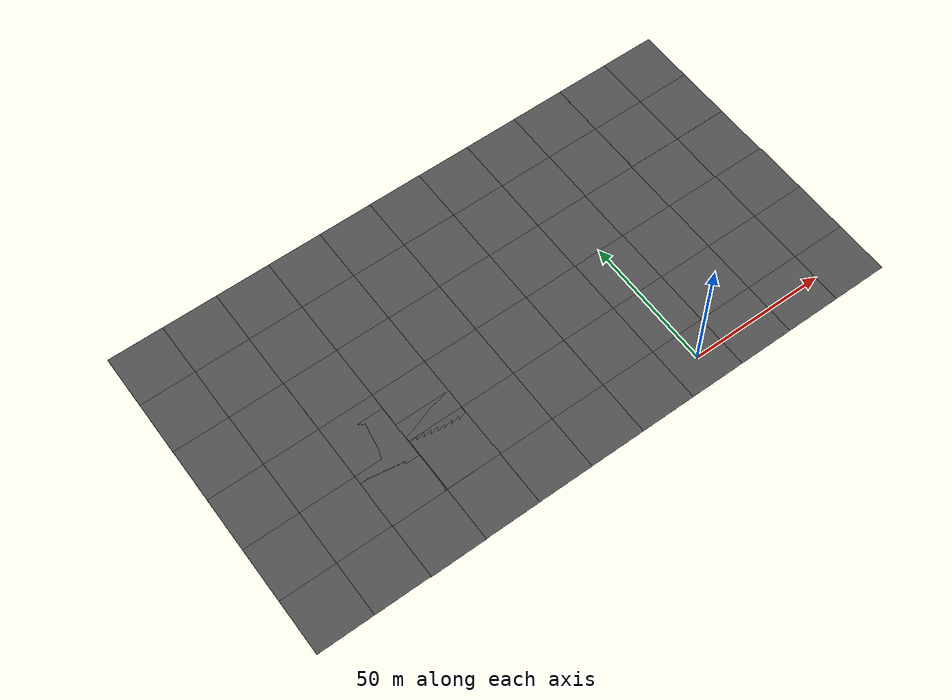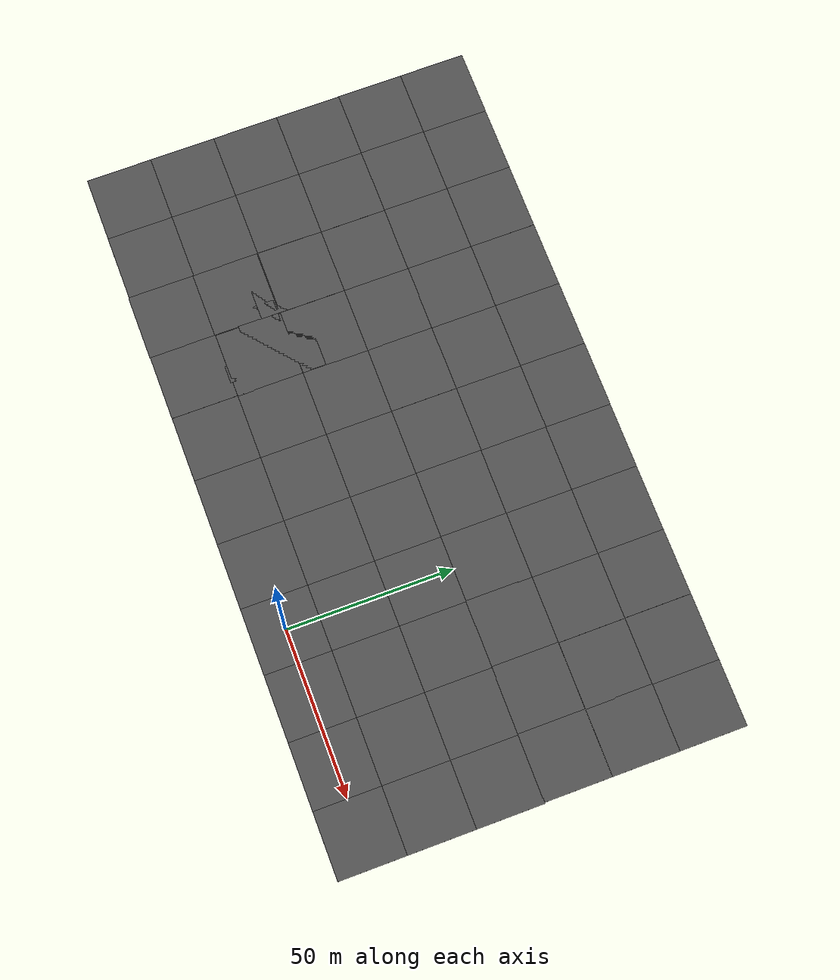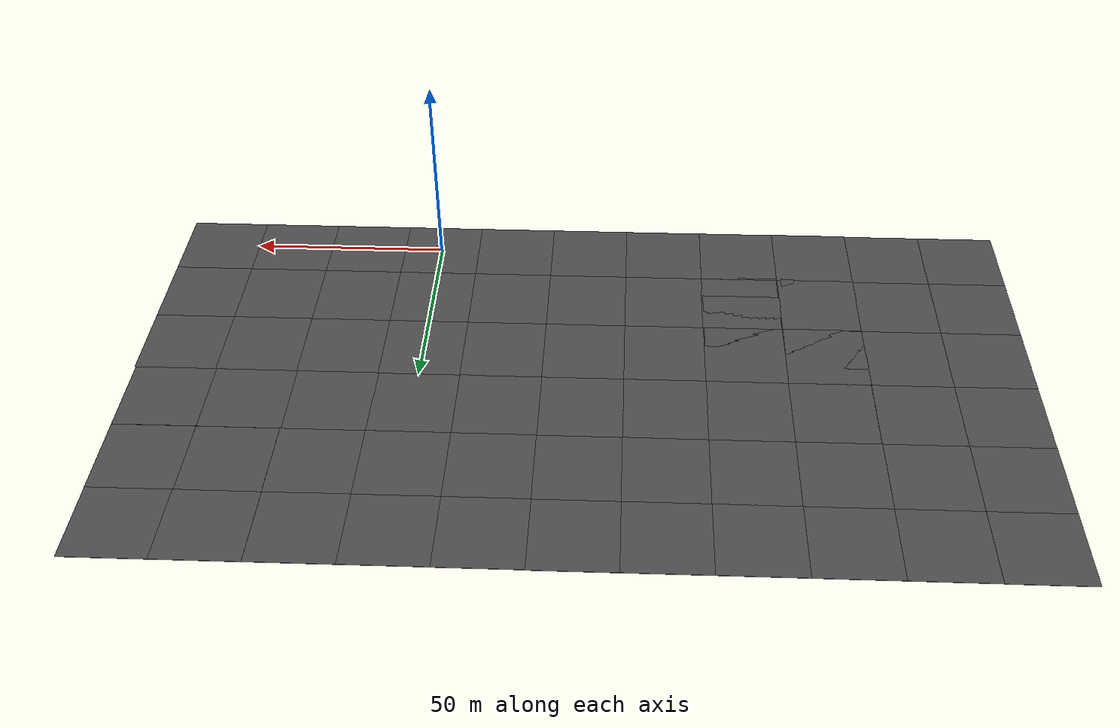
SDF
<sdf version="1.7">
 <world name="default">
  <model name="asphalt_plane">
   <static>1</static>
   <link name="link">
    <collision name="collision"><geometry><box><size>20 20 0.1</size></box></geometry></collision>
    <visual name="visual">
     <cast_shadows>0</cast_shadows>
     <geometry><box><size>20 20 0.1</size></box></geometry>
     <material>
      <script>
       <uri>model://asphalt_plane/materials/scripts</uri>
       <uri>model://asphalt_plane/materials/textures</uri>
       <name>vrc/asphalt</name>
      </script>
     </material>
    </visual>
   </link>
  </model>
  <model name="asphalt_plane_0">
   <static>1</static>
   <link name="link">
    <collision name="collision"><geometry><box><size>20 20 0.1</size></box></geometry></collision>
    <visual name="visual">
     <cast_shadows>0</cast_shadows>
     <geometry><box><size>20 20 0.1</size></box></geometry>
     <material>
      <script>
       <uri>model://asphalt_plane/materials/scripts</uri>
       <uri>model://asphalt_plane/materials/textures</uri>
       <name>vrc/asphalt</name>
      </script>
     </material>
    </visual>
   </link>
   <pose>-20 0 0 0 -0 0</pose>
  </model>
  <model name="asphalt_plane_1">
   <static>1</static>
   <link name="link">
    <collision name="collision"><geometry><box><size>20 20 0.1</size></box></geometry></collision>
    <visual name="visual">
     <cast_shadows>0</cast_shadows>
     <geometry><box><size>20 20 0.1</size></box></geometry>
     <material>
      <script>
       <uri>model://asphalt_plane/materials/scripts</uri>
       <uri>model://asphalt_plane/materials/textures</uri>
       <name>vrc/asphalt</name>
      </script>
     </material>
    </visual>
   </link>
   <pose>-40 0 0 0 -0 0</pose>
  </model>
  <model name="asphalt_plane_2">
   <static>1</static>
   <link name="link">
    <collision name="collision"><geometry><box><size>20 20 0.1</size></box></geometry></collision>
    <visual name="visual">
     <cast_shadows>0</cast_shadows>
     <geometry><box><size>20 20 0.1</size></box></geometry>
     <material>
      <script>
       <uri>model://asphalt_plane/materials/scripts</uri>
       <uri>model://asphalt_plane/materials/textures</uri>
       <name>vrc/asphalt</name>
      </script>
     </material>
    </visual>
   </link>
   <pose>20 0 0 0 -0 0</pose>
  </model>
  <model name="asphalt_plane_3">
   <static>1</static>
   <link name="link">
    <collision name="collision"><geometry><box><size>20 20 0.1</size></box></geometry></collision>
    <visual name="visual">
     <cast_shadows>0</cast_shadows>
     <geometry><box><size>20 20 0.1</size></box></geometry>
     <material>
      <script>
       <uri>model://asphalt_plane/materials/scripts</uri>
       <uri>model://asphalt_plane/materials/textures</uri>
       <name>vrc/asphalt</name>
      </script>
     </material>
    </visual>
   </link>
   <pose>40 0 0 0 -0 0</pose>
  </model>
  <model name="asphalt_plane_9">
   <static>1</static>
   <link name="link">
    <collision name="collision"><geometry><box><size>20 20 0.1</size></box></geometry></collision>
    <visual name="visual">
     <cast_shadows>0</cast_shadows>
     <geometry><box><size>20 20 0.1</size></box></geometry>
     <material>
      <script>
       <uri>model://asphalt_plane/materials/scripts</uri>
       <uri>model://asphalt_plane/materials/textures</uri>
       <name>vrc/asphalt</name>
      </script>
     </material>
    </visual>
   </link>
   <pose>-40 20 0 0 -0 0</pose>
  </model>
  <model name="asphalt_plane_10">
   <static>1</static>
   <link name="link">
    <collision name="collision"><geometry><box><size>20 20 0.1</size></box></geometry></collision>
    <visual name="visual">
     <cast_shadows>0</cast_shadows>
     <geometry><box><size>20 20 0.1</size></box></geometry>
     <material>
      <script>
       <uri>model://asphalt_plane/materials/scripts</uri>
       <uri>model://asphalt_plane/materials/textures</uri>
       <name>vrc/asphalt</name>
      </script>
     </material>
    </visual>
   </link>
   <pose>-20 20 0 0 -0 0</pose>
  </model>
  <model name="asphalt_plane_11">
   <static>1</static>
   <link name="link">
    <collision name="collision"><geometry><box><size>20 20 0.1</size></box></geometry></collision>
    <visual name="visual">
     <cast_shadows>0</cast_shadows>
     <geometry><box><size>20 20 0.1</size></box></geometry>
     <material>
      <script>
       <uri>model://asphalt_plane/materials/scripts</uri>
       <uri>model://asphalt_plane/materials/textures</uri>
       <name>vrc/asphalt</name>
      </script>
     </material>
    </visual>
   </link>
   <pose>0 20 0 0 -0 0</pose>
  </model>
  <model name="asphalt_plane_12">
   <static>1</static>
   <link name="link">
    <collision name="collision"><geometry><box><size>20 20 0.1</size></box></geometry></collision>
    <visual name="visual">
     <cast_shadows>0</cast_shadows>
     <geometry><box><size>20 20 0.1</size></box></geometry>
     <material>
      <script>
       <uri>model://asphalt_plane/materials/scripts</uri>
       <uri>model://asphalt_plane/materials/textures</uri>
       <name>vrc/asphalt</name>
      </script>
     </material>
    </visual>
   </link>
   <pose>20 20 0 0 -0 0</pose>
  </model>
  <model name="asphalt_plane_13">
   <static>1</static>
   <link name="link">
    <collision name="collision"><geometry><box><size>20 20 0.1</size></box></geometry></collision>
    <visual name="visual">
     <cast_shadows>0</cast_shadows>
     <geometry><box><size>20 20 0.1</size></box></geometry>
     <material>
      <script>
       <uri>model://asphalt_plane/materials/scripts</uri>
       <uri>model://asphalt_plane/materials/textures</uri>
       <name>vrc/asphalt</name>
      </script>
     </material>
    </visual>
   </link>
   <pose>40 20 0 0 -0 0</pose>
  </model>
  <model name="asphalt_plane_14">
   <static>1</static>
   <link name="link">
    <collision name="collision"><geometry><box><size>20 20 0.1</size></box></geometry></collision>
    <visual name="visual">
     <cast_shadows>0</cast_shadows>
     <geometry><box><size>20 20 0.1</size></box></geometry>
     <material>
      <script>
       <uri>model://asphalt_plane/materials/scripts</uri>
       <uri>model://asphalt_plane/materials/textures</uri>
       <name>vrc/asphalt</name>
      </script>
     </material>
    </visual>
   </link>
   <pose>60 0 0 0 -0 0</pose>
  </model>
  <model name="asphalt_plane_15">
   <static>1</static>
   <link name="link">
    <collision name="collision"><geometry><box><size>20 20 0.1</size></box></geometry></collision>
    <visual name="visual">
     <cast_shadows>0</cast_shadows>
     <geometry><box><size>20 20 0.1</size></box></geometry>
     <material>
      <script>
       <uri>model://asphalt_plane/materials/scripts</uri>
       <uri>model://asphalt_plane/materials/textures</uri>
       <name>vrc/asphalt</name>
      </script>
     </material>
    </visual>
   </link>
   <pose>60 20 0 0 -0 0</pose>
  </model>
  <model name="asphalt_plane_25">
   <static>1</static>
   <link name="link">
    <collision name="collision"><geometry><box><size>20 20 0.1</size></box></geometry></collision>
    <visual name="visual">
     <cast_shadows>0</cast_shadows>
     <geometry><box><size>20 20 0.1</size></box></geometry>
     <material>
      <script>
       <uri>model://asphalt_plane/materials/scripts</uri>
       <uri>model://asphalt_plane/materials/textures</uri>
       <name>vrc/asphalt</name>
      </script>
     </material>
    </visual>
   </link>
   <pose>-60 0 0 0 -0 0</pose>
  </model>
  <model name="asphalt_plane_26">
   <static>1</static>
   <link name="link">
    <collision name="collision"><geometry><box><size>20 20 0.1</size></box></geometry></collision>
    <visual name="visual">
     <cast_shadows>0</cast_shadows>
     <geometry><box><size>20 20 0.1</size></box></geometry>
     <material>
      <script>
       <uri>model://asphalt_plane/materials/scripts</uri>
       <uri>model://asphalt_plane/materials/textures</uri>
       <name>vrc/asphalt</name>
      </script>
     </material>
    </visual>
   </link>
   <pose>-60 20 0 0 -0 0</pose>
  </model>
  <model name="asphalt_plane_27">
   <static>1</static>
   <link name="link">
    <collision name="collision"><geometry><box><size>20 20 0.1</size></box></geometry></collision>
    <visual name="visual">
     <cast_shadows>0</cast_shadows>
     <geometry><box><size>20 20 0.1</size></box></geometry>
     <material>
      <script>
       <uri>model://asphalt_plane/materials/scripts</uri>
       <uri>model://asphalt_plane/materials/textures</uri>
       <name>vrc/asphalt</name>
      </script>
     </material>
    </visual>
   </link>
   <pose>-60 40 0 0 -0 0</pose>
  </model>
  <model name="asphalt_plane_28">
   <static>1</static>
   <link name="link">
    <collision name="collision"><geometry><box><size>20 20 0.1</size></box></geometry></collision>
    <visual name="visual">
     <cast_shadows>0</cast_shadows>
     <geometry><box><size>20 20 0.1</size></box></geometry>
     <material>
      <script>
       <uri>model://asphalt_plane/materials/scripts</uri>
       <uri>model://asphalt_plane/materials/textures</uri>
       <name>vrc/asphalt</name>
      </script>
     </material>
    </visual>
   </link>
   <pose>-40 40 0 0 -0 0</pose>
  </model>
  <model name="asphalt_plane_29">
   <static>1</static>
   <link name="link">
    <collision name="collision"><geometry><box><size>20 20 0.1</size></box></geometry></collision>
    <visual name="visual">
     <cast_shadows>0</cast_shadows>
     <geometry><box><size>20 20 0.1</size></box></geometry>
     <material>
      <script>
       <uri>model://asphalt_plane/materials/scripts</uri>
       <uri>model://asphalt_plane/materials/textures</uri>
       <name>vrc/asphalt</name>
      </script>
     </material>
    </visual>
   </link>
   <pose>-20 40 0 0 -0 0</pose>
  </model>
  <model name="asphalt_plane_30">
   <static>1</static>
   <link name="link">
    <collision name="collision"><geometry><box><size>20 20 0.1</size></box></geometry></collision>
    <visual name="visual">
     <cast_shadows>0</cast_shadows>
     <geometry><box><size>20 20 0.1</size></box></geometry>
     <material>
      <script>
       <uri>model://asphalt_plane/materials/scripts</uri>
       <uri>model://asphalt_plane/materials/textures</uri>
       <name>vrc/asphalt</name>
      </script>
     </material>
    </visual>
   </link>
   <pose>0 40 0 0 -0 0</pose>
  </model>
  <model name="asphalt_plane_31">
   <static>1</static>
   <link name="link">
    <collision name="collision"><geometry><box><size>20 20 0.1</size></box></geometry></collision>
    <visual name="visual">
     <cast_shadows>0</cast_shadows>
     <geometry><box><size>20 20 0.1</size></box></geometry>
     <material>
      <script>
       <uri>model://asphalt_plane/materials/scripts</uri>
       <uri>model://asphalt_plane/materials/textures</uri>
       <name>vrc/asphalt</name>
      </script>
     </material>
    </visual>
   </link>
   <pose>20 40 0 0 -0 0</pose>
  </model>
  <model name="asphalt_plane_32">
   <static>1</static>
   <link name="link">
    <collision name="collision"><geometry><box><size>20 20 0.1</size></box></geometry></collision>
    <visual name="visual">
     <cast_shadows>0</cast_shadows>
     <geometry><box><size>20 20 0.1</size></box></geometry>
     <material>
      <script>
       <uri>model://asphalt_plane/materials/scripts</uri>
       <uri>model://asphalt_plane/materials/textures</uri>
       <name>vrc/asphalt</name>
      </script>
     </material>
    </visual>
   </link>
   <pose>40 40 0 0 -0 0</pose>
  </model>
  <model name="asphalt_plane_33">
   <static>1</static>
   <link name="link">
    <collision name="collision"><geometry><box><size>20 20 0.1</size></box></geometry></collision>
    <visual name="visual">
     <cast_shadows>0</cast_shadows>
     <geometry><box><size>20 20 0.1</size></box></geometry>
     <material>
      <script>
       <uri>model://asphalt_plane/materials/scripts</uri>
       <uri>model://asphalt_plane/materials/textures</uri>
       <name>vrc/asphalt</name>
      </script>
     </material>
    </visual>
   </link>
   <pose>60 40 0 0 -0 0</pose>
  </model>
  <model name="asphalt_plane_27_clone">
   <static>1</static>
   <link name="link">
    <collision name="collision"><geometry><box><size>20 20 0.1</size></box></geometry></collision>
    <visual name="visual">
     <cast_shadows>0</cast_shadows>
     <geometry><box><size>20 20 0.1</size></box></geometry>
     <material>
      <script>
       <uri>model://asphalt_plane/materials/scripts</uri>
       <uri>model://asphalt_plane/materials/textures</uri>
       <name>vrc/asphalt</name>
      </script>
     </material>
    </visual>
   </link>
   <pose>-60.0136 59.9859 0 0 -0 0</pose>
  </model>
  <model name="asphalt_plane_27_clone_0">
   <static>1</static>
   <link name="link">
    <collision name="collision"><geometry><box><size>20 20 0.1</size></box></geometry></collision>
    <visual name="visual">
     <cast_shadows>0</cast_shadows>
     <geometry><box><size>20 20 0.1</size></box></geometry>
     <material>
      <script>
       <uri>model://asphalt_plane/materials/scripts</uri>
       <uri>model://asphalt_plane/materials/textures</uri>
       <name>vrc/asphalt</name>
      </script>
     </material>
    </visual>
   </link>
   <pose>-39.9999 59.992 0 0 -0 0</pose>
  </model>
  <model name="asphalt_plane_27_clone_clone">
   <static>1</static>
   <link name="link">
    <collision name="collision"><geometry><box><size>20 20 0.1</size></box></geometry></collision>
    <visual name="visual">
     <cast_shadows>0</cast_shadows>
     <geometry><box><size>20 20 0.1</size></box></geometry>
     <material>
      <script>
       <uri>model://asphalt_plane/materials/scripts</uri>
       <uri>model://asphalt_plane/materials/textures</uri>
       <name>vrc/asphalt</name>
      </script>
     </material>
    </visual>
   </link>
   <pose>-39.9881 79.9797 0 0 -0 0</pose>
  </model>
  <model name="asphalt_plane_27_clone_1">
   <static>1</static>
   <link name="link">
    <collision name="collision"><geometry><box><size>20 20 0.1</size></box></geometry></collision>
    <visual name="visual">
     <cast_shadows>0</cast_shadows>
     <geometry><box><size>20 20 0.1</size></box></geometry>
     <material>
      <script>
       <uri>model://asphalt_plane/materials/scripts</uri>
       <uri>model://asphalt_plane/materials/textures</uri>
       <name>vrc/asphalt</name>
      </script>
     </material>
    </visual>
   </link>
   <pose>-59.9581 79.901 0 0 -0 0</pose>
  </model>
  <model name="asphalt_plane_27_clone_2">
   <static>1</static>
   <link name="link">
    <collision name="collision"><geometry><box><size>20 20 0.1</size></box></geometry></collision>
    <visual name="visual">
     <cast_shadows>0</cast_shadows>
     <geometry><box><size>20 20 0.1</size></box></geometry>
     <material>
      <script>
       <uri>model://asphalt_plane/materials/scripts</uri>
       <uri>model://asphalt_plane/materials/textures</uri>
       <name>vrc/asphalt</name>
      </script>
     </material>
    </visual>
   </link>
   <pose>-79.9559 79.9056 0 0 -0 0</pose>
  </model>
  <model name="asphalt_plane_27_clone_1_clone">
   <static>1</static>
   <link name="link">
    <collision name="collision"><geometry><box><size>20 20 0.1</size></box></geometry></collision>
    <visual name="visual">
     <cast_shadows>0</cast_shadows>
     <geometry><box><size>20 20 0.1</size></box></geometry>
     <material>
      <script>
       <uri>model://asphalt_plane/materials/scripts</uri>
       <uri>model://asphalt_plane/materials/textures</uri>
       <name>vrc/asphalt</name>
      </script>
     </material>
    </visual>
   </link>
   <pose>-79.9276 60.0054 0 0 -0 0</pose>
  </model>
  <model name="asphalt_plane_27_clone_1_clone_0">
   <static>1</static>
   <link name="link">
    <collision name="collision"><geometry><box><size>20 20 0.1</size></box></geometry></collision>
    <visual name="visual">
     <cast_shadows>0</cast_shadows>
     <geometry><box><size>20 20 0.1</size></box></geometry>
     <material>
      <script>
       <uri>model://asphalt_plane/materials/scripts</uri>
       <uri>model://asphalt_plane/materials/textures</uri>
       <name>vrc/asphalt</name>
      </script>
     </material>
    </visual>
   </link>
   <pose>-99.9415 79.9063 0 0 -0 0</pose>
  </model>
  <model name="asphalt_plane_27_clone_1_clone_1">
   <static>1</static>
   <link name="link">
    <collision name="collision"><geometry><box><size>20 20 0.1</size></box></geometry></collision>
    <visual name="visual">
     <cast_shadows>0</cast_shadows>
     <geometry><box><size>20 20 0.1</size></box></geometry>
     <material>
      <script>
       <uri>model://asphalt_plane/materials/scripts</uri>
       <uri>model://asphalt_plane/materials/textures</uri>
       <name>vrc/asphalt</name>
      </script>
     </material>
    </visual>
   </link>
   <pose>-99.8424 59.9488 0 0 -0 0</pose>
  </model>
  <model name="asphalt_plane_27_clone_clone_clone">
   <static>1</static>
   <link name="link">
    <collision name="collision"><geometry><box><size>20 20 0.1</size></box></geometry></collision>
    <visual name="visual">
     <cast_shadows>0</cast_shadows>
     <geometry><box><size>20 20 0.1</size></box></geometry>
     <material>
      <script>
       <uri>model://asphalt_plane/materials/scripts</uri>
       <uri>model://asphalt_plane/materials/textures</uri>
       <name>vrc/asphalt</name>
      </script>
     </material>
    </visual>
   </link>
   <pose>-119.935 79.8947 0 0 -0 0</pose>
  </model>
  <model name="asphalt_plane_27_clone_clone_clone_0">
   <static>1</static>
   <link name="link">
    <collision name="collision"><geometry><box><size>20 20 0.1</size></box></geometry></collision>
    <visual name="visual">
     <cast_shadows>0</cast_shadows>
     <geometry><box><size>20 20 0.1</size></box></geometry>
     <material>
      <script>
       <uri>model://asphalt_plane/materials/scripts</uri>
       <uri>model://asphalt_plane/materials/textures</uri>
       <name>vrc/asphalt</name>
      </script>
     </material>
    </visual>
   </link>
   <pose>-119.867 59.9806 0 0 -0 0</pose>
  </model>
  <model name="asphalt_plane_27_clone_1_clone_1_clone">
   <static>1</static>
   <link name="link">
    <collision name="collision"><geometry><box><size>20 20 0.1</size></box></geometry></collision>
    <visual name="visual">
     <cast_shadows>0</cast_shadows>
     <geometry><box><size>20 20 0.1</size></box></geometry>
     <material>
      <script>
       <uri>model://asphalt_plane/materials/scripts</uri>
       <uri>model://asphalt_plane/materials/textures</uri>
       <name>vrc/asphalt</name>
      </script>
     </material>
    </visual>
   </link>
   <pose>-139.858 79.9193 0 0 -0 0</pose>
  </model>
  <model name="asphalt_plane_27_clone_1_clone_1_clone_0">
   <static>1</static>
   <link name="link">
    <collision name="collision"><geometry><box><size>20 20 0.1</size></box></geometry></collision>
    <visual name="visual">
     <cast_shadows>0</cast_shadows>
     <geometry><box><size>20 20 0.1</size></box></geometry>
     <material>
      <script>
       <uri>model://asphalt_plane/materials/scripts</uri>
       <uri>model://asphalt_plane/materials/textures</uri>
       <name>vrc/asphalt</name>
      </script>
     </material>
    </visual>
   </link>
   <pose>-139.829 59.9334 0 0 -0 0</pose>
  </model>
  <model name="asphalt_plane_27_clone_1_clone_1_clone_clone">
   <static>1</static>
   <link name="link">
    <collision name="collision"><geometry><box><size>20 20 0.1</size></box></geometry></collision>
    <visual name="visual">
     <cast_shadows>0</cast_shadows>
     <geometry><box><size>20 20 0.1</size></box></geometry>
     <material>
      <script>
       <uri>model://asphalt_plane/materials/scripts</uri>
       <uri>model://asphalt_plane/materials/textures</uri>
       <name>vrc/asphalt</name>
      </script>
     </material>
    </visual>
   </link>
   <pose>-139.842 39.9853 0 0 -0 0</pose>
  </model>
  <model name="asphalt_plane_27_clone_1_clone_1_clone_clone_0">
   <static>1</static>
   <link name="link">
    <collision name="collision"><geometry><box><size>20 20 0.1</size></box></geometry></collision>
    <visual name="visual">
     <cast_shadows>0</cast_shadows>
     <geometry><box><size>20 20 0.1</size></box></geometry>
     <material>
      <script>
       <uri>model://asphalt_plane/materials/scripts</uri>
       <uri>model://asphalt_plane/materials/textures</uri>
       <name>vrc/asphalt</name>
      </script>
     </material>
    </visual>
   </link>
   <pose>-139.843 20.01 0 0 -0 0</pose>
  </model>
  <model name="asphalt_plane_27_clone_1_clone_1_clone_clone_1">
   <static>1</static>
   <link name="link">
    <collision name="collision"><geometry><box><size>20 20 0.1</size></box></geometry></collision>
    <visual name="visual">
     <cast_shadows>0</cast_shadows>
     <geometry><box><size>20 20 0.1</size></box></geometry>
     <material>
      <script>
       <uri>model://asphalt_plane/materials/scripts</uri>
       <uri>model://asphalt_plane/materials/textures</uri>
       <name>vrc/asphalt</name>
      </script>
     </material>
    </visual>
   </link>
   <pose>-139.832 0.068199 0 0 -0 0</pose>
  </model>
  <model name="asphalt_plane_27_clone_1_clone_1_clone_clone_5">
   <static>1</static>
   <link name="link">
    <collision name="collision"><geometry><box><size>20 20 0.1</size></box></geometry></collision>
    <visual name="visual">
     <cast_shadows>0</cast_shadows>
     <geometry><box><size>20 20 0.1</size></box></geometry>
     <material>
      <script>
       <uri>model://asphalt_plane/materials/scripts</uri>
       <uri>model://asphalt_plane/materials/textures</uri>
       <name>vrc/asphalt</name>
      </script>
     </material>
    </visual>
   </link>
   <pose>-119.886 0.053935 0 0 -0 0</pose>
  </model>
  <model name="asphalt_plane_27_clone_1_clone_1_clone_clone_6">
   <static>1</static>
   <link name="link">
    <collision name="collision"><geometry><box><size>20 20 0.1</size></box></geometry></collision>
    <visual name="visual">
     <cast_shadows>0</cast_shadows>
     <geometry><box><size>20 20 0.1</size></box></geometry>
     <material>
      <script>
       <uri>model://asphalt_plane/materials/scripts</uri>
       <uri>model://asphalt_plane/materials/textures</uri>
       <name>vrc/asphalt</name>
      </script>
     </material>
    </visual>
   </link>
   <pose>-99.902 -0.148769 0 0 -0 0</pose>
  </model>
  <model name="asphalt_plane_27_clone_1_clone_1_clone_clone_8">
   <static>1</static>
   <link name="link">
    <collision name="collision"><geometry><box><size>20 20 0.1</size></box></geometry></collision>
    <visual name="visual">
     <cast_shadows>0</cast_shadows>
     <geometry><box><size>20 20 0.1</size></box></geometry>
     <material>
      <script>
       <uri>model://asphalt_plane/materials/scripts</uri>
       <uri>model://asphalt_plane/materials/textures</uri>
       <name>vrc/asphalt</name>
      </script>
     </material>
    </visual>
   </link>
   <pose>-80.0055 -0.037354 0 0 -0 0</pose>
  </model>
  <model name="asphalt_plane_6_clone">
   <static>1</static>
   <link name="link">
    <collision name="collision"><geometry><box><size>20 20 0.1</size></box></geometry></collision>
    <visual name="visual">
     <cast_shadows>0</cast_shadows>
     <geometry><box><size>20 20 0.1</size></box></geometry>
     <material>
      <script>
       <uri>model://asphalt_plane/materials/scripts</uri>
       <uri>model://asphalt_plane/materials/textures</uri>
       <name>vrc/asphalt</name>
      </script>
     </material>
    </visual>
   </link>
   <pose>-79.7896 19.9779 0 0 -0 0</pose>
  </model>
  <model name="asphalt_plane_6_clone_0">
   <static>1</static>
   <link name="link">
    <collision name="collision"><geometry><box><size>20 20 0.1</size></box></geometry></collision>
    <visual name="visual">
     <cast_shadows>0</cast_shadows>
     <geometry><box><size>20 20 0.1</size></box></geometry>
     <material>
      <script>
       <uri>model://asphalt_plane/materials/scripts</uri>
       <uri>model://asphalt_plane/materials/textures</uri>
       <name>vrc/asphalt</name>
      </script>
     </material>
    </visual>
   </link>
   <pose>-99.9899 19.7887 0 0 -0 0</pose>
  </model>
  <model name="asphalt_plane_6_clone_1">
   <static>1</static>
   <link name="link">
    <collision name="collision"><geometry><box><size>20 20 0.1</size></box></geometry></collision>
    <visual name="visual">
     <cast_shadows>0</cast_shadows>
     <geometry><box><size>20 20 0.1</size></box></geometry>
     <material>
      <script>
       <uri>model://asphalt_plane/materials/scripts</uri>
       <uri>model://asphalt_plane/materials/textures</uri>
       <name>vrc/asphalt</name>
      </script>
     </material>
    </visual>
   </link>
   <pose>-119.866 20.0261 0 0 -0 0</pose>
  </model>
  <model name="asphalt_plane_6_clone_2">
   <static>1</static>
   <link name="link">
    <collision name="collision"><geometry><box><size>20 20 0.1</size></box></geometry></collision>
    <visual name="visual">
     <cast_shadows>0</cast_shadows>
     <geometry><box><size>20 20 0.1</size></box></geometry>
     <material>
      <script>
       <uri>model://asphalt_plane/materials/scripts</uri>
       <uri>model://asphalt_plane/materials/textures</uri>
       <name>vrc/asphalt</name>
      </script>
     </material>
    </visual>
   </link>
   <pose>-119.869 39.9976 0 0 -0 0</pose>
  </model>
  <model name="asphalt_plane_6_clone_3">
   <static>1</static>
   <link name="link">
    <collision name="collision"><geometry><box><size>20 20 0.1</size></box></geometry></collision>
    <visual name="visual">
     <cast_shadows>0</cast_shadows>
     <geometry><box><size>20 20 0.1</size></box></geometry>
     <material>
      <script>
       <uri>model://asphalt_plane/materials/scripts</uri>
       <uri>model://asphalt_plane/materials/textures</uri>
       <name>vrc/asphalt</name>
      </script>
     </material>
    </visual>
   </link>
   <pose>-99.9503 40.0157 0 0 -0 0</pose>
  </model>
  <model name="asphalt_plane_6_clone_4">
   <static>1</static>
   <link name="link">
    <collision name="collision"><geometry><box><size>20 20 0.1</size></box></geometry></collision>
    <visual name="visual">
     <cast_shadows>0</cast_shadows>
     <geometry><box><size>20 20 0.1</size></box></geometry>
     <material>
      <script>
       <uri>model://asphalt_plane/materials/scripts</uri>
       <uri>model://asphalt_plane/materials/textures</uri>
       <name>vrc/asphalt</name>
      </script>
     </material>
    </visual>
   </link>
   <pose>-79.9169 40.0468 0 0 -0 0</pose>
  </model>
  <model name="asphalt_plane_27_clone_1_clone_1_clone_1">
   <static>1</static>
   <link name="link">
    <collision name="collision"><geometry><box><size>20 20 0.1</size></box></geometry></collision>
    <visual name="visual">
     <cast_shadows>0</cast_shadows>
     <geometry><box><size>20 20 0.1</size></box></geometry>
     <material>
      <script>
       <uri>model://asphalt_plane/materials/scripts</uri>
       <uri>model://asphalt_plane/materials/textures</uri>
       <name>vrc/asphalt</name>
      </script>
     </material>
    </visual>
   </link>
   <pose>-100.014 34.2811 0 0 -0 0</pose>
  </model>
  <model name="asphalt_plane_27_clone_1_clone_1_clone_2">
   <static>1</static>
   <link name="link">
    <collision name="collision"><geometry><box><size>20 20 0.1</size></box></geometry></collision>
    <visual name="visual">
     <cast_shadows>0</cast_shadows>
     <geometry><box><size>20 20 0.1</size></box></geometry>
     <material>
      <script>
       <uri>model://asphalt_plane/materials/scripts</uri>
       <uri>model://asphalt_plane/materials/textures</uri>
       <name>vrc/asphalt</name>
      </script>
     </material>
    </visual>
   </link>
   <pose>-84.4402 19.3764 0 0 -0 0</pose>
  </model>
  <model name="asphalt_plane_27_clone_1_clone_1_clone_3">
   <static>1</static>
   <link name="link">
    <collision name="collision"><geometry><box><size>20 20 0.1</size></box></geometry></collision>
    <visual name="visual">
     <cast_shadows>0</cast_shadows>
     <geometry><box><size>20 20 0.1</size></box></geometry>
     <material>
      <script>
       <uri>model://asphalt_plane/materials/scripts</uri>
       <uri>model://asphalt_plane/materials/textures</uri>
       <name>vrc/asphalt</name>
      </script>
     </material>
    </visual>
   </link>
   <pose>-80.1443 27.1188 0 0 -0 0</pose>
  </model>
  <model name="asphalt_plane_27_clone_1_clone_1_clone_clone_13">
   <static>1</static>
   <link name="link">
    <collision name="collision"><geometry><box><size>20 20 0.1</size></box></geometry></collision>
    <visual name="visual">
     <cast_shadows>0</cast_shadows>
     <geometry><box><size>20 20 0.1</size></box></geometry>
     <material>
      <script>
       <uri>model://asphalt_plane/materials/scripts</uri>
       <uri>model://asphalt_plane/materials/textures</uri>
       <name>vrc/asphalt</name>
      </script>
     </material>
    </visual>
   </link>
   <pose>-139.858 99.9172 0 0 -0 0</pose>
  </model>
  <model name="asphalt_plane_27_clone_1_clone_1_clone_clone_14">
   <static>1</static>
   <link name="link">
    <collision name="collision"><geometry><box><size>20 20 0.1</size></box></geometry></collision>
    <visual name="visual">
     <cast_shadows>0</cast_shadows>
     <geometry><box><size>20 20 0.1</size></box></geometry>
     <material>
      <script>
       <uri>model://asphalt_plane/materials/scripts</uri>
       <uri>model://asphalt_plane/materials/textures</uri>
       <name>vrc/asphalt</name>
      </script>
     </material>
    </visual>
   </link>
   <pose>-119.873 99.862 0 0 -0 0</pose>
  </model>
  <model name="asphalt_plane_27_clone_1_clone_1_clone_clone_15">
   <static>1</static>
   <link name="link">
    <collision name="collision"><geometry><box><size>20 20 0.1</size></box></geometry></collision>
    <visual name="visual">
     <cast_shadows>0</cast_shadows>
     <geometry><box><size>20 20 0.1</size></box></geometry>
     <material>
      <script>
       <uri>model://asphalt_plane/materials/scripts</uri>
       <uri>model://asphalt_plane/materials/textures</uri>
       <name>vrc/asphalt</name>
      </script>
     </material>
    </visual>
   </link>
   <pose>-99.9868 99.8515 0 0 -0 0</pose>
  </model>
  <model name="asphalt_plane_27_clone_1_clone_1_clone_clone_16">
   <static>1</static>
   <link name="link">
    <collision name="collision"><geometry><box><size>20 20 0.1</size></box></geometry></collision>
    <visual name="visual">
     <cast_shadows>0</cast_shadows>
     <geometry><box><size>20 20 0.1</size></box></geometry>
     <material>
      <script>
       <uri>model://asphalt_plane/materials/scripts</uri>
       <uri>model://asphalt_plane/materials/textures</uri>
       <name>vrc/asphalt</name>
      </script>
     </material>
    </visual>
   </link>
   <pose>-79.9836 99.8542 0 0 -0 0</pose>
  </model>
  <model name="asphalt_plane_27_clone_1_clone_1_clone_clone_17">
   <static>1</static>
   <link name="link">
    <collision name="collision"><geometry><box><size>20 20 0.1</size></box></geometry></collision>
    <visual name="visual">
     <cast_shadows>0</cast_shadows>
     <geometry><box><size>20 20 0.1</size></box></geometry>
     <material>
      <script>
       <uri>model://asphalt_plane/materials/scripts</uri>
       <uri>model://asphalt_plane/materials/textures</uri>
       <name>vrc/asphalt</name>
      </script>
     </material>
    </visual>
   </link>
   <pose>-59.985 99.8614 0 0 -0 0</pose>
  </model>
  <model name="asphalt_plane_27_clone_1_clone_1_clone_clone_18">
   <static>1</static>
   <link name="link">
    <collision name="collision"><geometry><box><size>20 20 0.1</size></box></geometry></collision>
    <visual name="visual">
     <cast_shadows>0</cast_shadows>
     <geometry><box><size>20 20 0.1</size></box></geometry>
     <material>
      <script>
       <uri>model://asphalt_plane/materials/scripts</uri>
       <uri>model://asphalt_plane/materials/textures</uri>
       <name>vrc/asphalt</name>
      </script>
     </material>
    </visual>
   </link>
   <pose>-40.0258 99.8866 0 0 -0 0</pose>
  </model>
  <model name="asphalt_plane_27_clone_3">
   <static>1</static>
   <link name="link">
    <collision name="collision"><geometry><box><size>20 20 0.1</size></box></geometry></collision>
    <visual name="visual">
     <cast_shadows>0</cast_shadows>
     <geometry><box><size>20 20 0.1</size></box></geometry>
     <material>
      <script>
       <uri>model://asphalt_plane/materials/scripts</uri>
       <uri>model://asphalt_plane/materials/textures</uri>
       <name>vrc/asphalt</name>
      </script>
     </material>
    </visual>
   </link>
   <pose>-20.0743 59.8695 0 0 -0 0</pose>
  </model>
  <model name="asphalt_plane_27_clone_4">
   <static>1</static>
   <link name="link">
    <collision name="collision"><geometry><box><size>20 20 0.1</size></box></geometry></collision>
    <visual name="visual">
     <cast_shadows>0</cast_shadows>
     <geometry><box><size>20 20 0.1</size></box></geometry>
     <material>
      <script>
       <uri>model://asphalt_plane/materials/scripts</uri>
       <uri>model://asphalt_plane/materials/textures</uri>
       <name>vrc/asphalt</name>
      </script>
     </material>
    </visual>
   </link>
   <pose>-0.096776 59.873 0 0 -0 0</pose>
  </model>
  <model name="asphalt_plane_27_clone_5">
   <static>1</static>
   <link name="link">
    <collision name="collision"><geometry><box><size>20 20 0.1</size></box></geometry></collision>
    <visual name="visual">
     <cast_shadows>0</cast_shadows>
     <geometry><box><size>20 20 0.1</size></box></geometry>
     <material>
      <script>
       <uri>model://asphalt_plane/materials/scripts</uri>
       <uri>model://asphalt_plane/materials/textures</uri>
       <name>vrc/asphalt</name>
      </script>
     </material>
    </visual>
   </link>
   <pose>19.7535 59.8812 0 0 -0 0</pose>
  </model>
  <model name="asphalt_plane_27_clone_6">
   <static>1</static>
   <link name="link">
    <collision name="collision"><geometry><box><size>20 20 0.1</size></box></geometry></collision>
    <visual name="visual">
     <cast_shadows>0</cast_shadows>
     <geometry><box><size>20 20 0.1</size></box></geometry>
     <material>
      <script>
       <uri>model://asphalt_plane/materials/scripts</uri>
       <uri>model://asphalt_plane/materials/textures</uri>
       <name>vrc/asphalt</name>
      </script>
     </material>
    </visual>
   </link>
   <pose>39.7313 59.8669 0 0 -0 0</pose>
  </model>
  <model name="asphalt_plane_27_clone_7">
   <static>1</static>
   <link name="link">
    <collision name="collision"><geometry><box><size>20 20 0.1</size></box></geometry></collision>
    <visual name="visual">
     <cast_shadows>0</cast_shadows>
     <geometry><box><size>20 20 0.1</size></box></geometry>
     <material>
      <script>
       <uri>model://asphalt_plane/materials/scripts</uri>
       <uri>model://asphalt_plane/materials/textures</uri>
       <name>vrc/asphalt</name>
      </script>
     </material>
    </visual>
   </link>
   <pose>59.7045 59.8558 0 0 -0 0</pose>
  </model>
  <model name="asphalt_plane_27_clone_8">
   <static>1</static>
   <link name="link">
    <collision name="collision"><geometry><box><size>20 20 0.1</size></box></geometry></collision>
    <visual name="visual">
     <cast_shadows>0</cast_shadows>
     <geometry><box><size>20 20 0.1</size></box></geometry>
     <material>
      <script>
       <uri>model://asphalt_plane/materials/scripts</uri>
       <uri>model://asphalt_plane/materials/textures</uri>
       <name>vrc/asphalt</name>
      </script>
     </material>
    </visual>
   </link>
   <pose>-20.038 79.8483 0 0 -0 0</pose>
  </model>
  <model name="asphalt_plane_27_clone_9">
   <static>1</static>
   <link name="link">
    <collision name="collision"><geometry><box><size>20 20 0.1</size></box></geometry></collision>
    <visual name="visual">
     <cast_shadows>0</cast_shadows>
     <geometry><box><size>20 20 0.1</size></box></geometry>
     <material>
      <script>
       <uri>model://asphalt_plane/materials/scripts</uri>
       <uri>model://asphalt_plane/materials/textures</uri>
       <name>vrc/asphalt</name>
      </script>
     </material>
    </visual>
   </link>
   <pose>-0.05274 79.844 0 0 -0 0</pose>
  </model>
  <model name="asphalt_plane_27_clone_10">
   <static>1</static>
   <link name="link">
    <collision name="collision"><geometry><box><size>20 20 0.1</size></box></geometry></collision>
    <visual name="visual">
     <cast_shadows>0</cast_shadows>
     <geometry><box><size>20 20 0.1</size></box></geometry>
     <material>
      <script>
       <uri>model://asphalt_plane/materials/scripts</uri>
       <uri>model://asphalt_plane/materials/textures</uri>
       <name>vrc/asphalt</name>
      </script>
     </material>
    </visual>
   </link>
   <pose>19.9368 79.8731 0 0 -0 0</pose>
  </model>
  <model name="asphalt_plane_27_clone_11">
   <static>1</static>
   <link name="link">
    <collision name="collision"><geometry><box><size>20 20 0.1</size></box></geometry></collision>
    <visual name="visual">
     <cast_shadows>0</cast_shadows>
     <geometry><box><size>20 20 0.1</size></box></geometry>
     <material>
      <script>
       <uri>model://asphalt_plane/materials/scripts</uri>
       <uri>model://asphalt_plane/materials/textures</uri>
       <name>vrc/asphalt</name>
      </script>
     </material>
    </visual>
   </link>
   <pose>39.9514 79.8883 0 0 -0 0</pose>
  </model>
  <model name="asphalt_plane_27_clone_10_clone">
   <static>1</static>
   <link name="link">
    <collision name="collision"><geometry><box><size>20 20 0.1</size></box></geometry></collision>
    <visual name="visual">
     <cast_shadows>0</cast_shadows>
     <geometry><box><size>20 20 0.1</size></box></geometry>
     <material>
      <script>
       <uri>model://asphalt_plane/materials/scripts</uri>
       <uri>model://asphalt_plane/materials/textures</uri>
       <name>vrc/asphalt</name>
      </script>
     </material>
    </visual>
   </link>
   <pose>59.7064 79.8981 0 0 -0 0</pose>
  </model>
  <model name="asphalt_plane_27_clone_10_clone_0">
   <static>1</static>
   <link name="link">
    <collision name="collision"><geometry><box><size>20 20 0.1</size></box></geometry></collision>
    <visual name="visual">
     <cast_shadows>0</cast_shadows>
     <geometry><box><size>20 20 0.1</size></box></geometry>
     <material>
      <script>
       <uri>model://asphalt_plane/materials/scripts</uri>
       <uri>model://asphalt_plane/materials/textures</uri>
       <name>vrc/asphalt</name>
      </script>
     </material>
    </visual>
   </link>
   <pose>-20.0512 99.8192 0 0 -0 0</pose>
  </model>
  <model name="asphalt_plane_27_clone_10_clone_1">
   <static>1</static>
   <link name="link">
    <collision name="collision"><geometry><box><size>20 20 0.1</size></box></geometry></collision>
    <visual name="visual">
     <cast_shadows>0</cast_shadows>
     <geometry><box><size>20 20 0.1</size></box></geometry>
     <material>
      <script>
       <uri>model://asphalt_plane/materials/scripts</uri>
       <uri>model://asphalt_plane/materials/textures</uri>
       <name>vrc/asphalt</name>
      </script>
     </material>
    </visual>
   </link>
   <pose>-0.084875 99.7935 0 0 -0 0</pose>
  </model>
  <model name="asphalt_plane_27_clone_10_clone_2">
   <static>1</static>
   <link name="link">
    <collision name="collision"><geometry><box><size>20 20 0.1</size></box></geometry></collision>
    <visual name="visual">
     <cast_shadows>0</cast_shadows>
     <geometry><box><size>20 20 0.1</size></box></geometry>
     <material>
      <script>
       <uri>model://asphalt_plane/materials/scripts</uri>
       <uri>model://asphalt_plane/materials/textures</uri>
       <name>vrc/asphalt</name>
      </script>
     </material>
    </visual>
   </link>
   <pose>19.8802 99.8072 0 0 -0 0</pose>
  </model>
  <model name="asphalt_plane_27_clone_10_clone_3">
   <static>1</static>
   <link name="link">
    <collision name="collision"><geometry><box><size>20 20 0.1</size></box></geometry></collision>
    <visual name="visual">
     <cast_shadows>0</cast_shadows>
     <geometry><box><size>20 20 0.1</size></box></geometry>
     <material>
      <script>
       <uri>model://asphalt_plane/materials/scripts</uri>
       <uri>model://asphalt_plane/materials/textures</uri>
       <name>vrc/asphalt</name>
      </script>
     </material>
    </visual>
   </link>
   <pose>39.8969 99.8304 0 0 -0 0</pose>
  </model>
  <model name="asphalt_plane_27_clone_10_clone_4">
   <static>1</static>
   <link name="link">
    <collision name="collision"><geometry><box><size>20 20 0.1</size></box></geometry></collision>
    <visual name="visual">
     <cast_shadows>0</cast_shadows>
     <geometry><box><size>20 20 0.1</size></box></geometry>
     <material>
      <script>
       <uri>model://asphalt_plane/materials/scripts</uri>
       <uri>model://asphalt_plane/materials/textures</uri>
       <name>vrc/asphalt</name>
      </script>
     </material>
    </visual>
   </link>
   <pose>59.6704 99.8554 0 0 -0 0</pose>
  </model>
 </world>
</sdf>
